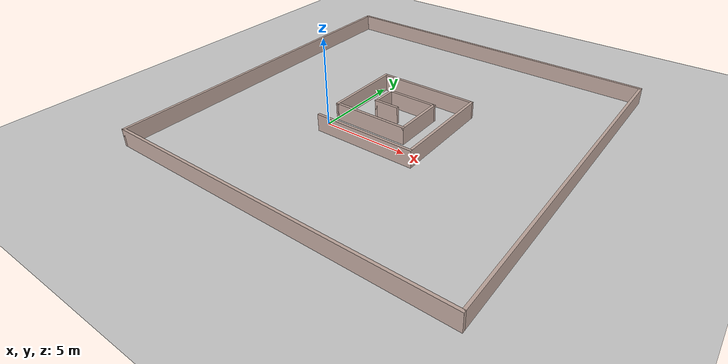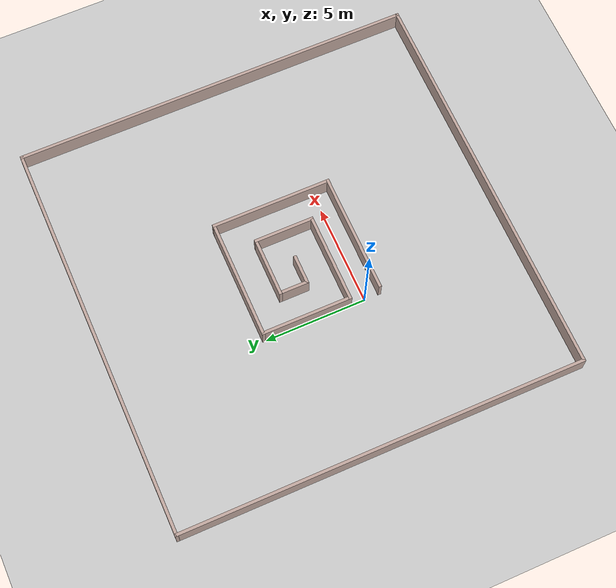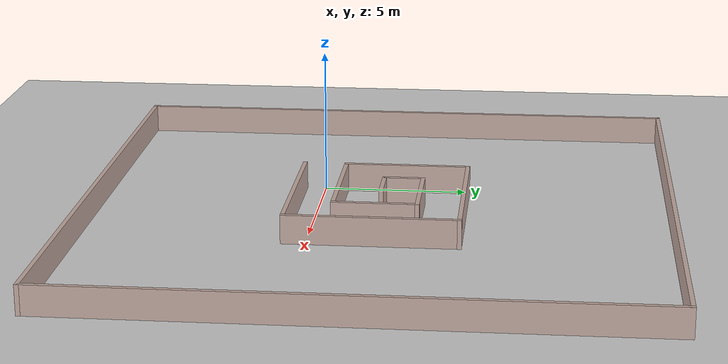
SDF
<sdf version="1.7">
 <world name="default">
  <light name="sun" type="directional">
   <pose>0 0 10 0 -0 0</pose>
   <diffuse>0.8 0.8 0.8 1</diffuse>
   <specular>0.2 0.2 0.2 1</specular>
   <attenuation>
    <range>1000</range>
    <constant>0.9</constant>
    <linear>0.01</linear>
    <quadratic>0.001</quadratic>
   </attenuation>
   <direction>-0.5 0.1 -0.9</direction>
   <spot><inner_angle>0</inner_angle><outer_angle>0</outer_angle><falloff>0</falloff></spot>
  </light>
  <model name="ground_plane">
   <static>1</static>
   <link name="link">
    <collision name="collision">
     <geometry><plane><normal>0 0 1</normal><size>100 100</size></plane></geometry>
     <surface><friction><ode><mu>100</mu><mu2>50</mu2></ode></friction></surface>
    </collision>
    <visual name="visual">
     <cast_shadows>0</cast_shadows>
     <geometry><plane><normal>0 0 1</normal><size>100 100</size></plane></geometry>
     <material>
      <script><uri>file://media/materials/scripts/gazebo.material</uri><name>Gazebo/Grey</name></script>
     </material>
    </visual>
   </link>
  </model>
  <gravity>0 0 -9.8</gravity>
  <magnetic_field>6e-06 2.3e-05 -4.2e-05</magnetic_field>
  <atmosphere type="adiabatic"/>
  <physics type="ode">
   <max_step_size>0.001</max_step_size>
   <real_time_factor>1</real_time_factor>
   <real_time_update_rate>1000</real_time_update_rate>
  </physics>
  <scene><ambient>0.4 0.4 0.4 1</ambient><background>0.7 0.7 0.7 1</background><shadows>1</shadows></scene>
  <audio><device>default</device></audio>
  <spherical_coordinates>
   <surface_model>EARTH_WGS84</surface_model>
   <latitude_deg>0</latitude_deg>
   <longitude_deg>0</longitude_deg>
   <elevation>0</elevation>
   <heading_deg>0</heading_deg>
  </spherical_coordinates>
  <model name="labirinth">
   <static>1</static>
   <pose>3 2.18 0 0 -0 0</pose>
   <link name="Wall_11">
    <collision name="Wall_11_Collision">
     <geometry><box><size>6 0.15 1</size></box></geometry>
     <pose>0 0 0.5 0 -0 0</pose>
    </collision>
    <visual name="Wall_11_Visual">
     <pose>0 0 0.5 0 -0 0</pose>
     <geometry><box><size>6 0.15 1</size></box></geometry>
     <material>
      <script><uri>file://media/materials/scripts/gazebo.material</uri><name>Gazebo/Grey</name></script>
      <ambient>0.760784 0.662745 0.627451 1</ambient>
     </material>
     <meta><layer>0</layer></meta>
    </visual>
    <pose>-0 -2.925 0 0 -0 3.14159</pose>
   </link>
   <link name="Wall_14">
    <collision name="Wall_14_Collision">
     <geometry><box><size>6 0.15 1</size></box></geometry>
     <pose>0 0 0.5 0 -0 0</pose>
    </collision>
    <visual name="Wall_14_Visual">
     <pose>0 0 0.5 0 -0 0</pose>
     <geometry><box><size>6 0.15 1</size></box></geometry>
     <material>
      <script><uri>file://media/materials/scripts/gazebo.material</uri><name>Gazebo/Grey</name></script>
      <ambient>0.760784 0.662745 0.627451 1</ambient>
     </material>
     <meta><layer>0</layer></meta>
    </visual>
    <pose>2.925 0 0 0 -0 1.5708</pose>
   </link>
   <link name="Wall_15">
    <collision name="Wall_15_Collision">
     <geometry><box><size>6 0.15 1</size></box></geometry>
     <pose>0 0 0.5 0 -0 0</pose>
    </collision>
    <visual name="Wall_15_Visual">
     <pose>0 0 0.5 0 -0 0</pose>
     <geometry><box><size>6 0.15 1</size></box></geometry>
     <material>
      <script><uri>file://media/materials/scripts/gazebo.material</uri><name>Gazebo/Grey</name></script>
      <ambient>0.760784 0.662745 0.627451 1</ambient>
     </material>
     <meta><layer>0</layer></meta>
    </visual>
    <pose>-0 2.925 0 0 -0 3.14159</pose>
   </link>
   <link name="Wall_16">
    <collision name="Wall_16_Collision">
     <geometry><box><size>4.5 0.15 1</size></box></geometry>
     <pose>0 0 0.5 0 -0 0</pose>
    </collision>
    <visual name="Wall_16_Visual">
     <pose>0 0 0.5 0 -0 0</pose>
     <geometry><box><size>4.5 0.15 1</size></box></geometry>
     <material>
      <script><uri>file://media/materials/scripts/gazebo.material</uri><name>Gazebo/Grey</name></script>
      <ambient>0.760784 0.662745 0.627451 1</ambient>
     </material>
     <meta><layer>0</layer></meta>
    </visual>
    <pose>-2.925 0.75 0 0 -0 -1.5708</pose>
   </link>
   <link name="Wall_18">
    <collision name="Wall_18_Collision">
     <geometry><box><size>4.5 0.15 1</size></box></geometry>
     <pose>0 0 0.5 0 -0 0</pose>
    </collision>
    <visual name="Wall_18_Visual">
     <pose>0 0 0.5 0 -0 0</pose>
     <geometry><box><size>4.5 0.15 1</size></box></geometry>
     <material>
      <script><uri>file://media/materials/scripts/gazebo.material</uri><name>Gazebo/Grey</name></script>
      <ambient>0.760784 0.662745 0.627451 1</ambient>
     </material>
     <meta><layer>0</layer></meta>
    </visual>
    <pose>-0.75 -1.425 0 0 -0 0</pose>
   </link>
   <link name="Wall_20">
    <collision name="Wall_20_Collision">
     <geometry><box><size>3 0.15 1</size></box></geometry>
     <pose>0 0 0.5 0 -0 0</pose>
    </collision>
    <visual name="Wall_20_Visual">
     <pose>0 0 0.5 0 -0 0</pose>
     <geometry><box><size>3 0.15 1</size></box></geometry>
     <material>
      <script><uri>file://media/materials/scripts/gazebo.material</uri><name>Gazebo/Grey</name></script>
      <ambient>0.760784 0.662745 0.627451 1</ambient>
     </material>
     <meta><layer>0</layer></meta>
    </visual>
    <pose>1.425 0 0 0 -0 1.5708</pose>
   </link>
   <link name="Wall_21">
    <collision name="Wall_21_Collision">
     <geometry><box><size>3 0.15 1</size></box></geometry>
     <pose>0 0 0.5 0 -0 0</pose>
    </collision>
    <visual name="Wall_21_Visual">
     <pose>0 0 0.5 0 -0 0</pose>
     <geometry><box><size>3 0.15 1</size></box></geometry>
     <material>
      <script><uri>file://media/materials/scripts/gazebo.material</uri><name>Gazebo/Grey</name></script>
      <ambient>0.760784 0.662745 0.627451 1</ambient>
     </material>
     <meta><layer>0</layer></meta>
    </visual>
    <pose>-0 1.425 0 0 -0 3.14159</pose>
   </link>
   <link name="Wall_22">
    <collision name="Wall_22_Collision">
     <geometry><box><size>1.5 0.15 1</size></box></geometry>
     <pose>0 0 0.5 0 -0 0</pose>
    </collision>
    <visual name="Wall_22_Visual">
     <pose>0 0 0.5 0 -0 0</pose>
     <geometry><box><size>1.5 0.15 1</size></box></geometry>
     <material>
      <script><uri>file://media/materials/scripts/gazebo.material</uri><name>Gazebo/Grey</name></script>
      <ambient>0.760784 0.662745 0.627451 1</ambient>
     </material>
     <meta><layer>0</layer></meta>
    </visual>
    <pose>-1.425 0.75 0 0 -0 -1.5708</pose>
   </link>
   <link name="Wall_23">
    <collision name="Wall_23_Collision">
     <geometry><box><size>1.5 0.15 1</size></box></geometry>
     <pose>0 0 0.5 0 -0 0</pose>
    </collision>
    <visual name="Wall_23_Visual">
     <pose>0 0 0.5 0 -0 0</pose>
     <geometry><box><size>1.5 0.15 1</size></box></geometry>
     <material>
      <script><uri>file://media/materials/scripts/gazebo.material</uri><name>Gazebo/Grey</name></script>
      <ambient>0.760784 0.662745 0.627451 1</ambient>
     </material>
     <meta><layer>0</layer></meta>
    </visual>
    <pose>-0.75 0.075 0 0 -0 0</pose>
   </link>
   <static>1</static>
  </model>
  <model name="walls">
   <static>1</static>
   <pose>3 2.25 0 0 -0 0</pose>
   <link name="Wall_11">
    <collision name="Wall_11_Collision">
     <geometry><box><size>20 0.15 1</size></box></geometry>
     <pose>0 0 0.5 0 -0 0</pose>
    </collision>
    <visual name="Wall_11_Visual">
     <pose>0 0 0.5 0 -0 0</pose>
     <geometry><box><size>20 0.15 1</size></box></geometry>
     <material>
      <script><uri>file://media/materials/scripts/gazebo.material</uri><name>Gazebo/Grey</name></script>
      <ambient>0.760784 0.662745 0.627451 1</ambient>
     </material>
     <meta><layer>0</layer></meta>
    </visual>
    <pose>0 9.925 0 0 -0 0</pose>
   </link>
   <link name="Wall_18">
    <collision name="Wall_18_Collision">
     <geometry><box><size>20 0.15 1</size></box></geometry>
     <pose>0 0 0.5 0 -0 0</pose>
    </collision>
    <visual name="Wall_18_Visual">
     <pose>0 0 0.5 0 -0 0</pose>
     <geometry><box><size>20 0.15 1</size></box></geometry>
     <material>
      <script><uri>file://media/materials/scripts/gazebo.material</uri><name>Gazebo/Grey</name></script>
      <ambient>0.760784 0.662745 0.627451 1</ambient>
     </material>
     <meta><layer>0</layer></meta>
    </visual>
    <pose>-9.925 0 0 0 -0 -1.5708</pose>
   </link>
   <link name="Wall_20">
    <collision name="Wall_20_Collision">
     <geometry><box><size>20 0.15 1</size></box></geometry>
     <pose>0 0 0.5 0 -0 0</pose>
    </collision>
    <visual name="Wall_20_Visual">
     <pose>0 0 0.5 0 -0 0</pose>
     <geometry><box><size>20 0.15 1</size></box></geometry>
     <material>
      <script><uri>file://media/materials/scripts/gazebo.material</uri><name>Gazebo/Grey</name></script>
      <ambient>0.760784 0.662745 0.627451 1</ambient>
     </material>
     <meta><layer>0</layer></meta>
    </visual>
    <pose>9.925 0 0 0 -0 -1.5708</pose>
   </link>
   <link name="Wall_22">
    <collision name="Wall_22_Collision">
     <geometry><box><size>20 0.15 1</size></box></geometry>
     <pose>0 0 0.5 0 -0 0</pose>
    </collision>
    <visual name="Wall_22_Visual">
     <pose>0 0 0.5 0 -0 0</pose>
     <geometry><box><size>20 0.15 1</size></box></geometry>
     <material>
      <script><uri>file://media/materials/scripts/gazebo.material</uri><name>Gazebo/Grey</name></script>
      <ambient>0.760784 0.662745 0.627451 1</ambient>
     </material>
     <meta><layer>0</layer></meta>
    </visual>
    <pose>0 -9.925 0 0 -0 0</pose>
   </link>
   <static>1</static>
  </model>
 </world>
</sdf>
